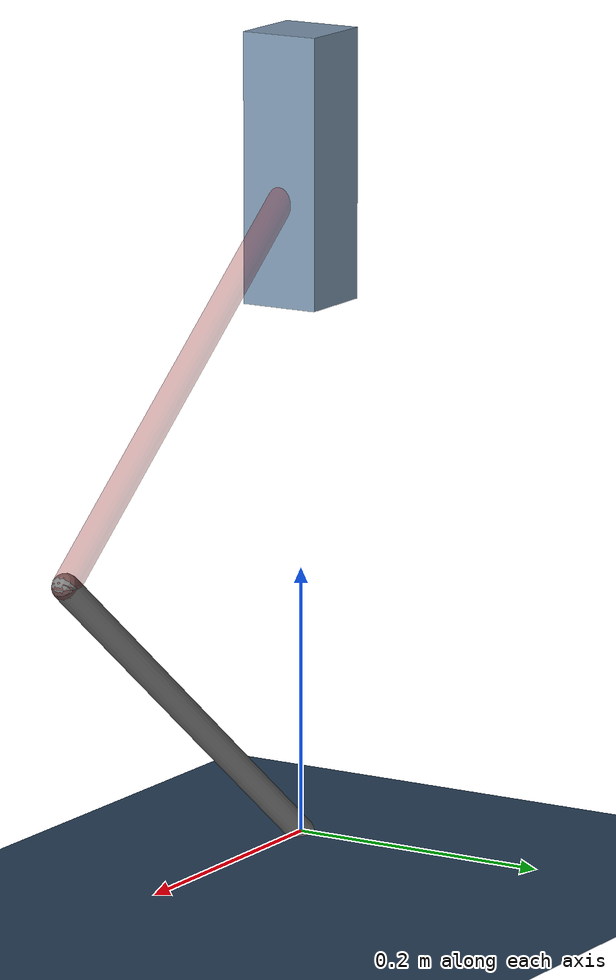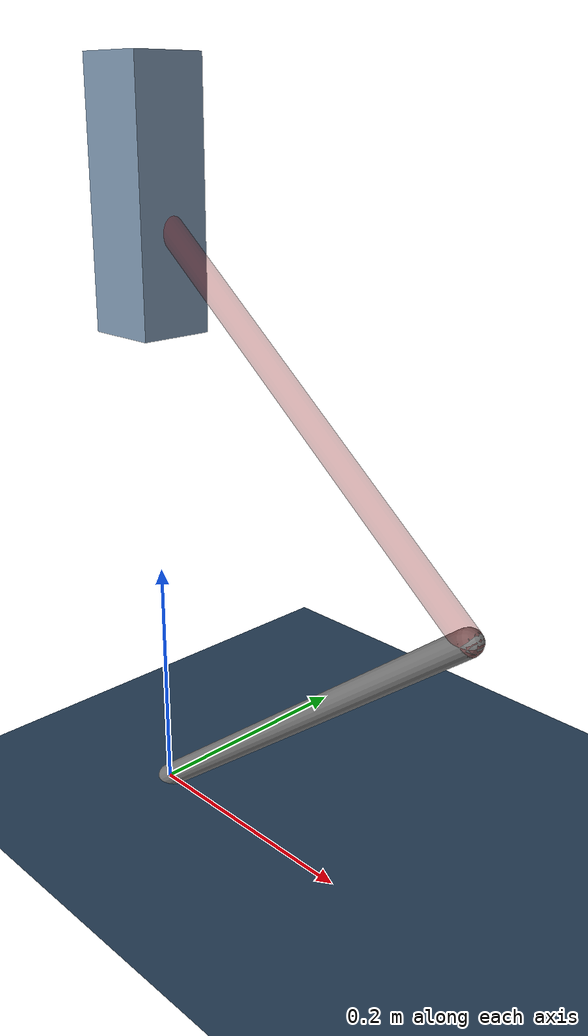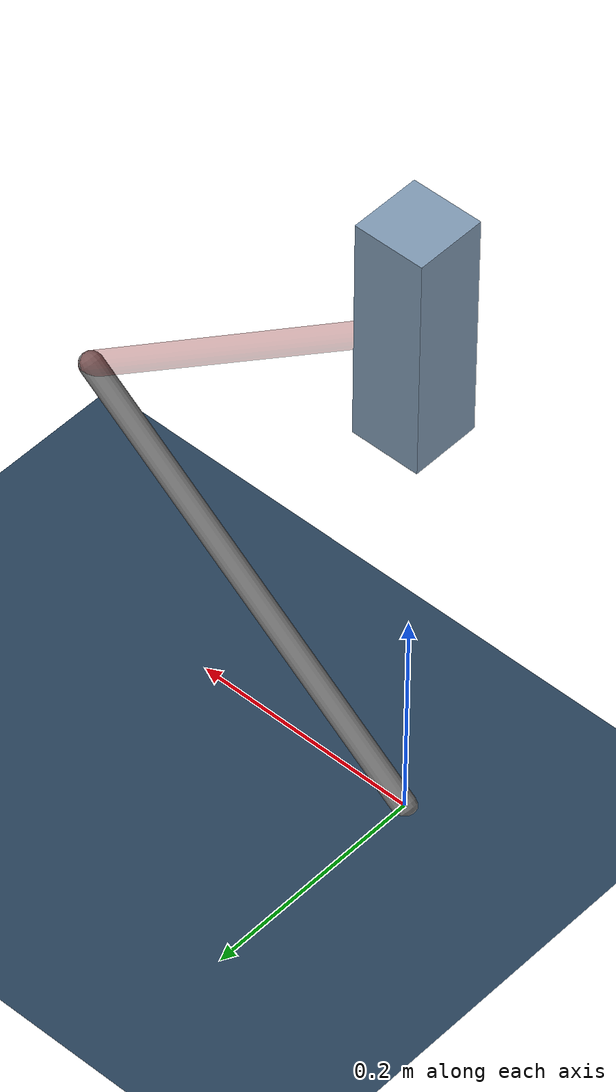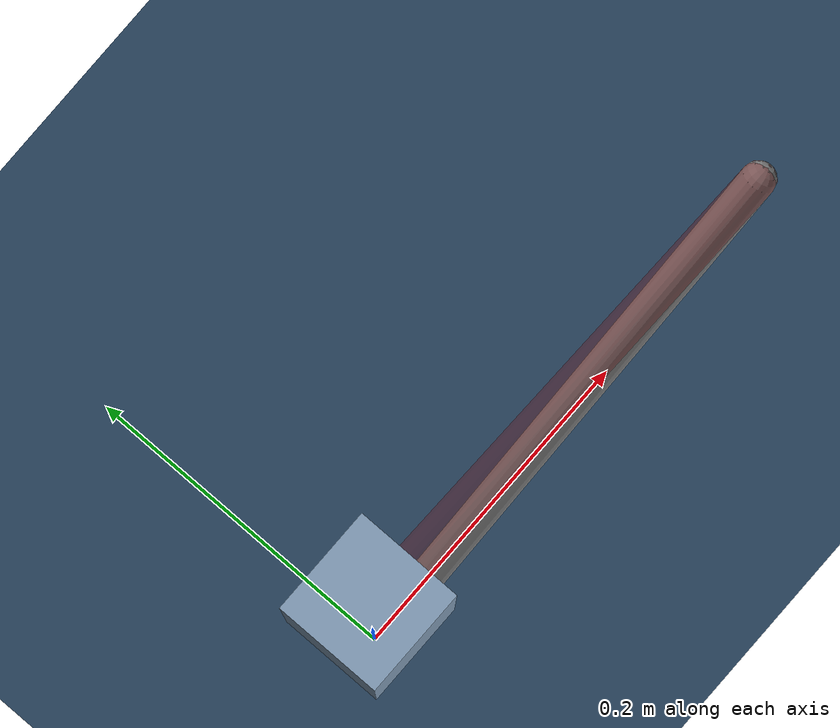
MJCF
<mujoco model="Hopper2D_5bar2width">
	<compiler inertiafromgeom="true" angle="radian"/>
	<option timestep="0.001" integrator="implicit" cone="elliptic" solver="Newton" tolerance="1e-10"/>

	<default>
		<geom contype="1" conaffinity="1" condim="3" friction="2 0.005 0.0001" solref="0.005 1"/>
		<joint limited="true" damping="0.1"/>
	</default>

	<asset>
		<texture name="skybox" type="skybox" builtin="gradient" rgb1=".4 .6 .8" rgb2="0 0 0" width="800" height="800"/>
		<texture name="grid" type="2d" builtin="checker" rgb1=".1 .2 .3" rgb2=".2 .3 .4" width="300" height="300" mark="edge" markrgb=".2 .3 .4"/>
		<material name="ground" texture="grid" texrepeat="1 1" texuniform="true" reflectance="0.1"/>
		<material name="leg" rgba="0.5 0.6 0.7 1"/>
	</asset>

	<worldbody>
		<!-- Ground -->
		<geom name="floor" type="plane" size="5 5 0.25" material="ground"/>

		<!-- Lighting -->
		<light directional="false" diffuse="0.8 0.8 0.8" specular="0.3 0.3 0.3" pos="0 0 2" dir="0 0 -1"/>
		<light mode="targetbodycom" target="base" directional="false" diffuse="0.8 0.8 0.8" specular="0.3 0.3 0.3" pos="0 0 2" dir="0 0 -1"/>

		<!-- Cameras -->
		<camera name="fixed" pos="0 -2 1" xyaxes="1 0 0 0 0 1"/>
		<camera name="tracking" mode="trackcom" pos="0 -3 1"/>

		<!-- Root body with x and z sliding joints -->
		<body name="root" pos="0 0 0.5">
			<joint name="slide_x" type="slide" axis="1 0 0" range="-100 100"/>
			<joint name="slide_z" type="slide" axis="0 0 1" range="0 10"/>

            <joint name="hinge_y" type="hinge" axis="0 1 0" pos="0 0 0" range="-0.05 0.05" stiffness="0" damping="0.1"/>

			<!-- Main hopper body -->
			<body name="base" pos="0 0 0">
				<geom name="torso" type="box" size="0.03 0.03 0.1" mass="2.25" material="leg"/>

				<!-- Thigh -->
				<body name="link1" pos="0 0 0" euler="0 0.6751315329370315 0">
					<joint type="hinge" axis="0 -1 0" pos="0 0 0" name="hinge1" limited="true" range="-3.14 3.14" stiffness="0" damping="0.1"/>
					<geom name="thigh" type="capsule" fromto="0 0 0 0.4 0 0" size="0.01" rgba="0.5 0 0 0.3" mass="1.2702"/>

					<!-- Shin -->
					<body name="link2" pos="0.4 0 0" euler="0 1.79132958771573 0">
						<joint type="hinge" axis="0 -1 0" pos="0 0 0" name="hinge2" limited="true" range="-3.14 3.14" stiffness="0" damping="0.1" />
						<geom name="shank" type="capsule" fromto="0 0 0 0.4 0 0" size="0.01" mass="0.5642"/>

						<!-- Foot -->

					</body>
				</body>
			</body>
		</body>
	</worldbody>

	<actuator>
		<motor name="torque1" joint="hinge1" ctrlrange="-33.0 33.0" ctrllimited="true" gear="1"/>
		<motor name="torque2" joint="hinge2" ctrlrange="-44.998799999999996 44.998799999999996" ctrllimited="true" gear="1"/>
	</actuator>
</mujoco>
